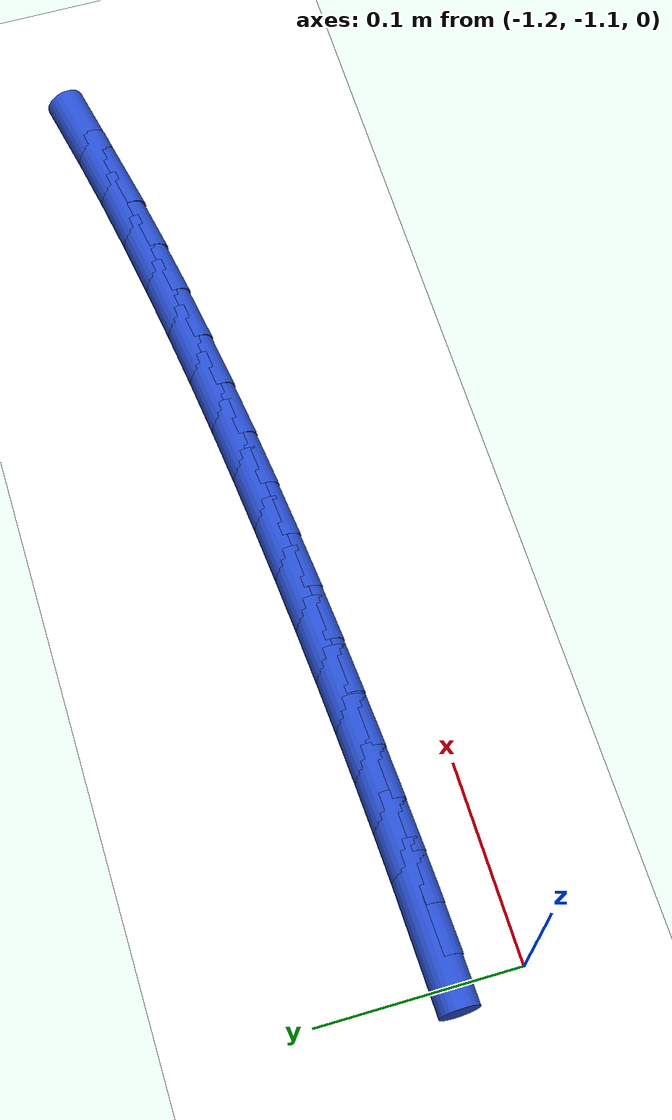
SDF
<sdf version="1.6">
 <world name="default">
  <model name="ground_plane">
   <static>1</static>
   <link name="link">
    <collision name="collision">
     <geometry><plane><normal>0 0 1</normal><size>100 100</size></plane></geometry>
     <surface><friction><ode><mu>100</mu><mu2>50</mu2></ode></friction></surface>
    </collision>
    <visual name="visual">
     <cast_shadows>0</cast_shadows>
     <geometry><plane><normal>0 0 1</normal><size>100 100</size></plane></geometry>
     <material>
      <script><uri>file://media/materials/scripts/gazebo.material</uri><name>Gazebo/WhiteGlow</name></script>
     </material>
    </visual>
   </link>
  </model>
  <model name="line">
   <link name="link_203">
    <pose>-1.173118853728309 -1.063297472135908 0.01 0 1.57 0.022272289177073693</pose>
    <collision name="collision">
     <geometry><cylinder><radius>0.01</radius><length>0.08</length></cylinder></geometry>
    </collision>
    <visual name="visual">
     <material>
      <script><name>Gazebo/Blue</name><uri>file://media/materials/scripts/gazebo.material</uri></script>
     </material>
     <geometry><cylinder><radius>0.01</radius><length>0.08</length></cylinder></geometry>
    </visual>
   </link>
   <link name="link_204">
    <pose>-1.149297644574714 -1.0627668315319054 0.01 0 1.57 0.035067343369390824</pose>
    <collision name="collision">
     <geometry><cylinder><radius>0.01</radius><length>0.08</length></cylinder></geometry>
    </collision>
    <visual name="visual">
     <material>
      <script><name>Gazebo/Blue</name><uri>file://media/materials/scripts/gazebo.material</uri></script>
     </material>
     <geometry><cylinder><radius>0.01</radius><length>0.08</length></cylinder></geometry>
    </visual>
   </link>
   <link name="link_205">
    <pose>-1.125121428278089 -1.0619186881659382 0.01 0 1.57 0.041853228829622384</pose>
    <collision name="collision">
     <geometry><cylinder><radius>0.01</radius><length>0.08</length></cylinder></geometry>
    </collision>
    <visual name="visual">
     <material>
      <script><name>Gazebo/Blue</name><uri>file://media/materials/scripts/gazebo.material</uri></script>
     </material>
     <geometry><cylinder><radius>0.01</radius><length>0.08</length></cylinder></geometry>
    </visual>
   </link>
   <link name="link_206">
    <pose>-1.0999965299377576 -1.0608665156136072 0.01 0 1.57 0.047874950685157555</pose>
    <collision name="collision">
     <geometry><cylinder><radius>0.01</radius><length>0.08</length></cylinder></geometry>
    </collision>
    <visual name="visual">
     <material>
      <script><name>Gazebo/Blue</name><uri>file://media/materials/scripts/gazebo.material</uri></script>
     </material>
     <geometry><cylinder><radius>0.01</radius><length>0.08</length></cylinder></geometry>
    </visual>
   </link>
   <link name="link_207">
    <pose>-1.0739042048338923 -1.05961639159073 0.01 0 1.57 0.05438229384104995</pose>
    <collision name="collision">
     <geometry><cylinder><radius>0.01</radius><length>0.08</length></cylinder></geometry>
    </collision>
    <visual name="visual">
     <material>
      <script><name>Gazebo/Blue</name><uri>file://media/materials/scripts/gazebo.material</uri></script>
     </material>
     <geometry><cylinder><radius>0.01</radius><length>0.08</length></cylinder></geometry>
    </visual>
   </link>
   <link name="link_208">
    <pose>-1.0469585518293203 -1.0581495788855877 0.01 0 1.57 0.061408905914189404</pose>
    <collision name="collision">
     <geometry><cylinder><radius>0.01</radius><length>0.08</length></cylinder></geometry>
    </collision>
    <visual name="visual">
     <material>
      <script><name>Gazebo/Blue</name><uri>file://media/materials/scripts/gazebo.material</uri></script>
     </material>
     <geometry><cylinder><radius>0.01</radius><length>0.08</length></cylinder></geometry>
    </visual>
   </link>
   <link name="link_209">
    <pose>-1.019273669786864 -1.0564473402864607 0.01 0 1.57 0.06899665727494897</pose>
    <collision name="collision">
     <geometry><cylinder><radius>0.01</radius><length>0.08</length></cylinder></geometry>
    </collision>
    <visual name="visual">
     <material>
      <script><name>Gazebo/Blue</name><uri>file://media/materials/scripts/gazebo.material</uri></script>
     </material>
     <geometry><cylinder><radius>0.01</radius><length>0.08</length></cylinder></geometry>
    </visual>
   </link>
   <link name="link_210">
    <pose>-0.9909636575693512 -1.0544909385816308 0.01 0 1.57 0.07719609273799258</pose>
    <collision name="collision">
     <geometry><cylinder><radius>0.01</radius><length>0.08</length></cylinder></geometry>
    </collision>
    <visual name="visual">
     <material>
      <script><name>Gazebo/Blue</name><uri>file://media/materials/scripts/gazebo.material</uri></script>
     </material>
     <geometry><cylinder><radius>0.01</radius><length>0.08</length></cylinder></geometry>
    </visual>
   </link>
   <link name="link_211">
    <pose>-0.9621426140396049 -1.0522616365593787 0.01 0 1.57 0.08606728242666996</pose>
    <collision name="collision">
     <geometry><cylinder><radius>0.01</radius><length>0.08</length></cylinder></geometry>
    </collision>
    <visual name="visual">
     <material>
      <script><name>Gazebo/Blue</name><uri>file://media/materials/scripts/gazebo.material</uri></script>
     </material>
     <geometry><cylinder><radius>0.01</radius><length>0.08</length></cylinder></geometry>
    </visual>
   </link>
   <link name="link_212">
    <pose>-0.932924638060452 -1.0497406970079854 0.01 0 1.57 0.09568106619948939</pose>
    <collision name="collision">
     <geometry><cylinder><radius>0.01</radius><length>0.08</length></cylinder></geometry>
    </collision>
    <visual name="visual">
     <material>
      <script><name>Gazebo/Blue</name><uri>file://media/materials/scripts/gazebo.material</uri></script>
     </material>
     <geometry><cylinder><radius>0.01</radius><length>0.08</length></cylinder></geometry>
    </visual>
   </link>
   <link name="link_213">
    <pose>-0.9034238284947159 -1.0469093827157328 0.01 0 1.57 0.10612072333896005</pose>
    <collision name="collision">
     <geometry><cylinder><radius>0.01</radius><length>0.08</length></cylinder></geometry>
    </collision>
    <visual name="visual">
     <material>
      <script><name>Gazebo/Blue</name><uri>file://media/materials/scripts/gazebo.material</uri></script>
     </material>
     <geometry><cylinder><radius>0.01</radius><length>0.08</length></cylinder></geometry>
    </visual>
   </link>
   <link name="link_214">
    <pose>-0.8737542842052237 -1.0437489564709008 0.01 0 1.57 0.11748413258089227</pose>
    <collision name="collision">
     <geometry><cylinder><radius>0.01</radius><length>0.08</length></cylinder></geometry>
    </collision>
    <visual name="visual">
     <material>
      <script><name>Gazebo/Blue</name><uri>file://media/materials/scripts/gazebo.material</uri></script>
     </material>
     <geometry><cylinder><radius>0.01</radius><length>0.08</length></cylinder></geometry>
    </visual>
   </link>
   <link name="link_215">
    <pose>-0.8440301040547995 -1.0402406810617715 0.01 0 1.57 0.12988652217513158</pose>
    <collision name="collision">
     <geometry><cylinder><radius>0.01</radius><length>0.08</length></cylinder></geometry>
    </collision>
    <visual name="visual">
     <material>
      <script><name>Gazebo/Blue</name><uri>file://media/materials/scripts/gazebo.material</uri></script>
     </material>
     <geometry><cylinder><radius>0.01</radius><length>0.08</length></cylinder></geometry>
    </visual>
   </link>
   <link name="link_216">
    <pose>-0.8143653869062677 -1.0363658192766256 0.01 0 1.57 0.14346394954105438</pose>
    <collision name="collision">
     <geometry><cylinder><radius>0.01</radius><length>0.08</length></cylinder></geometry>
    </collision>
    <visual name="visual">
     <material>
      <script><name>Gazebo/Blue</name><uri>file://media/materials/scripts/gazebo.material</uri></script>
     </material>
     <geometry><cylinder><radius>0.01</radius><length>0.08</length></cylinder></geometry>
    </visual>
   </link>
   <link name="link_217">
    <pose>-0.7848742316224552 -1.0321056339037444 0.01 0 1.57 0.15837769894103343</pose>
    <collision name="collision">
     <geometry><cylinder><radius>0.01</radius><length>0.08</length></cylinder></geometry>
    </collision>
    <visual name="visual">
     <material>
      <script><name>Gazebo/Blue</name><uri>file://media/materials/scripts/gazebo.material</uri></script>
     </material>
     <geometry><cylinder><radius>0.01</radius><length>0.08</length></cylinder></geometry>
    </visual>
   </link>
   <link name="link_218">
    <pose>-0.755670737066185 -1.0274413877314086 0.01 0 1.57 0.1748198472659547</pose>
    <collision name="collision">
     <geometry><cylinder><radius>0.01</radius><length>0.08</length></cylinder></geometry>
    </collision>
    <visual name="visual">
     <material>
      <script><name>Gazebo/Blue</name><uri>file://media/materials/scripts/gazebo.material</uri></script>
     </material>
     <geometry><cylinder><radius>0.01</radius><length>0.08</length></cylinder></geometry>
    </visual>
   </link>
   <link name="link_219">
    <pose>-0.7268690021002847 -1.0223543435478997 0.01 0 1.57 0.1928794951392281</pose>
    <collision name="collision">
     <geometry><cylinder><radius>0.01</radius><length>0.08</length></cylinder></geometry>
    </collision>
    <visual name="visual">
     <material>
      <script><name>Gazebo/Blue</name><uri>file://media/materials/scripts/gazebo.material</uri></script>
     </material>
     <geometry><cylinder><radius>0.01</radius><length>0.08</length></cylinder></geometry>
    </visual>
   </link>
  </model>
 </world>
</sdf>
